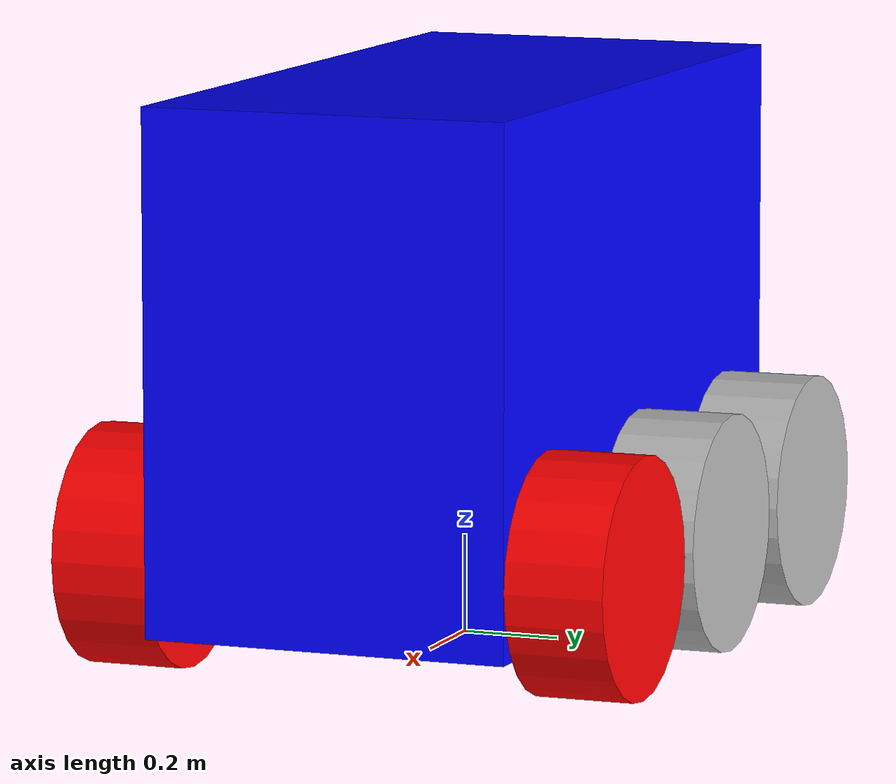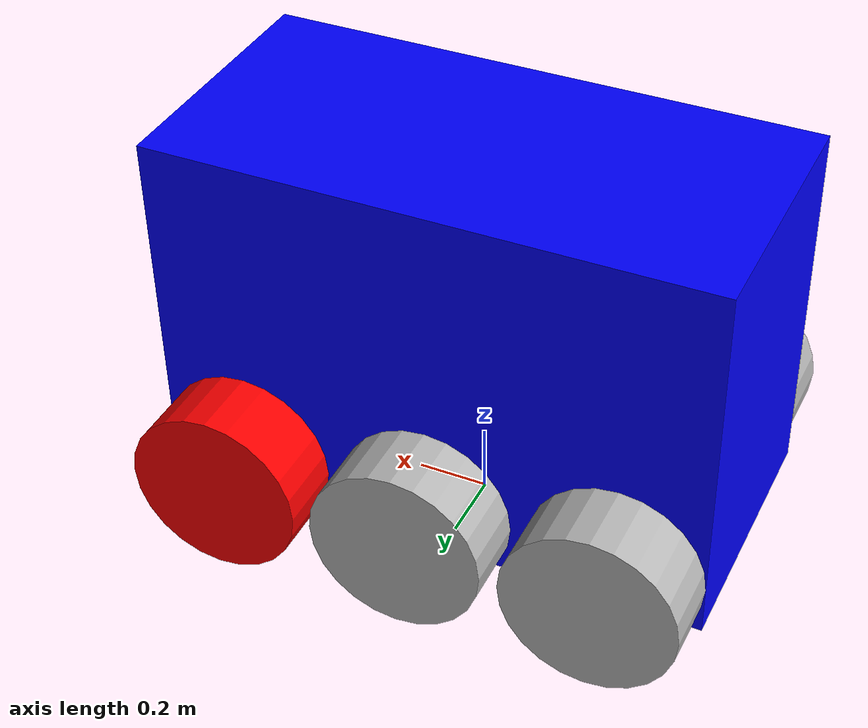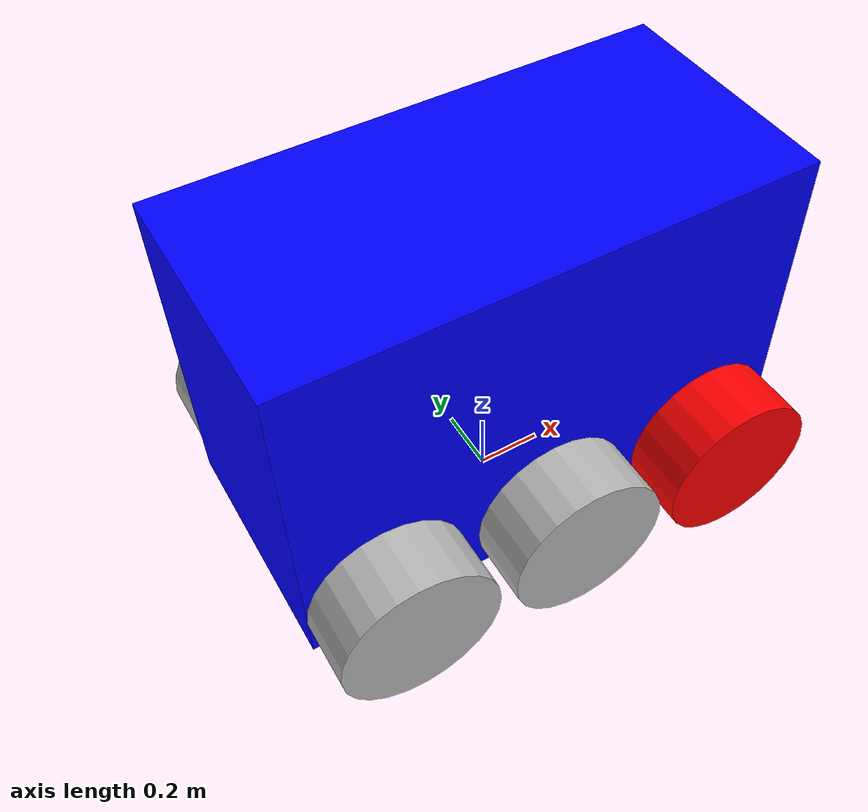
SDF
<?xml version="1.0" ?>
<sdf version="1.10">
  <model name='FLIP' canonical_link='chassis'>
    <pose>0 0 0 0 0 0</pose>

    <link name='chassis'>
      <pose relative_to='__model__'>0 0 0.625 0 0 0</pose>
      <inertial>
        <pose>0 0 0 0 0 0</pose>
        <mass>450.0</mass>
        <inertia>
          <ixx>62.438</ixx>
          <ixy>0</ixy>
          <ixz>0</ixz>
          <iyy>131.438</iyy>
          <iyz>0</iyz>
          <izz>111.188</izz>
        </inertia>
      </inertial>
      <visual name='visual'>
        <geometry><box><size>1.55 0.75 1.05</size></box></geometry>
        <material>
          <ambient>0.0 0.0 1.0 1</ambient>
          <diffuse>0.0 0.0 1.0 1</diffuse>
          <specular>0.0 0.0 1.0 1</specular>
        </material>
      </visual>
      <collision name='collision'>
        <geometry><box><size>1.55 0.75 1.05</size></box></geometry>
      </collision>
      <sensor name="imu_sensor" type="imu">
        <always_on>1</always_on>
        <update_rate>20</update_rate>
        <visualize>true</visualize>
        <topic>imu</topic>
      </sensor>
      <sensor name="gpu_lidar" type="gpu_lidar">
        <pose>0.6 0 0.3 0 0 0</pose>
        <always_on>1</always_on>
        <update_rate>10</update_rate>
        <lidar>
          <scan>
            <horizontal>
              <samples>640</samples>
              <resolution>1</resolution>
              <min_angle>-1.396263</min_angle>
              <max_angle>1.396263</max_angle>
            </horizontal>
            <vertical>
              <samples>1</samples>
              <resolution>1</resolution>
              <min_angle>0</min_angle>
              <max_angle>0</max_angle>
            </vertical>
          </scan>
          <range>
            <min>0.08</min>
            <max>10.0</max>
            <resolution>0.01</resolution>
          </range>
        </lidar>
        <visualize>true</visualize>
        <topic>lidar</topic>
      </sensor>
    </link>

    <link name='left_back_wheel'>
      <pose relative_to="chassis">-0.533 0.475 -0.383 -1.5707 0 0</pose>
      <inertial><mass>5</mass><inertia><ixx>0.694</ixx><ixy>0</ixy><ixz>0</ixz><iyy>1.460</iyy><iyz>0</iyz><izz>1.235</izz></inertia></inertial>
      <visual name='visual'><geometry><cylinder><radius>0.242</radius><length>0.2</length></cylinder></geometry></visual>
      <collision name='collision'><geometry><cylinder><radius>0.242</radius><length>0.2</length></cylinder></geometry></collision>
    </link>

    <link name='left_middle_wheel'>
      <pose relative_to="chassis">0 0.475 -0.383 -1.5707 0 0</pose>
      <inertial><mass>5</mass><inertia><ixx>0.694</ixx><ixy>0</ixy><ixz>0</ixz><iyy>1.460</iyy><iyz>0</iyz><izz>1.235</izz></inertia></inertial>
      <visual name='visual'><geometry><cylinder><radius>0.242</radius><length>0.2</length></cylinder></geometry></visual>
      <collision name='collision'><geometry><cylinder><radius>0.242</radius><length>0.2</length></cylinder></geometry></collision>
    </link>

    <link name='right_back_wheel'>
      <pose relative_to="chassis">-0.533 -0.475 -0.383 -1.5707 0 0</pose>
      <inertial><mass>5</mass><inertia><ixx>0.694</ixx><ixy>0</ixy><ixz>0</ixz><iyy>1.460</iyy><iyz>0</iyz><izz>1.235</izz></inertia></inertial>
      <visual name='visual'><geometry><cylinder><radius>0.242</radius><length>0.2</length></cylinder></geometry></visual>
      <collision name='collision'><geometry><cylinder><radius>0.242</radius><length>0.2</length></cylinder></geometry></collision>
    </link>

    <link name='right_middle_wheel'>
      <pose relative_to="chassis">0 -0.475 -0.383 -1.5707 0 0</pose>
      <inertial><mass>5</mass><inertia><ixx>0.694</ixx><ixy>0</ixy><ixz>0</ixz><iyy>1.460</iyy><iyz>0</iyz><izz>1.235</izz></inertia></inertial>
      <visual name='visual'><geometry><cylinder><radius>0.242</radius><length>0.2</length></cylinder></geometry></visual>
      <collision name='collision'><geometry><cylinder><radius>0.242</radius><length>0.2</length></cylinder></geometry></collision>
    </link>

    <link name='left_front_steer_link'>
      <pose relative_to="chassis">0.533 0.475 -0.383 0 0 0</pose>
      <inertial><mass>1.0</mass><inertia><ixx>0.01</ixx><ixy>0</ixy><ixz>0</ixz><iyy>0.01</iyy><iyz>0</iyz><izz>0.01</izz></inertia></inertial>
    </link>

    <link name='right_front_steer_link'>
      <pose relative_to="chassis">0.533 -0.475 -0.383 0 0 0</pose>
      <inertial><mass>1.0</mass><inertia><ixx>0.01</ixx><ixy>0</ixy><ixz>0</ixz><iyy>0.01</iyy><iyz>0</iyz><izz>0.01</izz></inertia></inertial>
    </link>

    <link name='left_front_wheel'>
      <pose relative_to="left_front_steer_link">0 0 0 -1.5707 0 0</pose>
      <inertial><mass>5</mass><inertia><ixx>0.694</ixx><ixy>0</ixy><ixz>0</ixz><iyy>1.460</iyy><iyz>0</iyz><izz>1.235</izz></inertia></inertial>
      <visual name='visual'>
        <geometry><cylinder><radius>0.242</radius><length>0.2</length></cylinder></geometry>
        <material><ambient>1.0 0.0 0.0 1</ambient><diffuse>1.0 0.0 0.0 1</diffuse><specular>1.0 0.0 0.0 1</specular></material>
      </visual>
      <collision name='collision'><geometry><cylinder><radius>0.242</radius><length>0.2</length></cylinder></geometry></collision>
    </link>

    <link name='right_front_wheel'>
      <pose relative_to="right_front_steer_link">0 0 0 -1.5707 0 0</pose>
      <inertial><mass>5</mass><inertia><ixx>0.694</ixx><ixy>0</ixy><ixz>0</ixz><iyy>1.460</iyy><iyz>0</iyz><izz>1.235</izz></inertia></inertial>
      <visual name='visual'>
        <geometry><cylinder><radius>0.242</radius><length>0.2</length></cylinder></geometry>
        <material><ambient>1.0 0.0 0.0 1</ambient><diffuse>1.0 0.0 0.0 1</diffuse><specular>1.0 0.0 0.0 1</specular></material>
      </visual>
      <collision name='collision'><geometry><cylinder><radius>0.242</radius><length>0.2</length></cylinder></geometry></collision>
    </link>

    <joint name='left_back_wheel_joint' type='revolute'>
      <parent>chassis</parent><child>left_back_wheel</child>
      <axis><xyz expressed_in='__model__'>0 1 0</xyz><limit><lower>-1.79769e+308</lower><upper>1.79769e+308</upper></limit></axis>
    </joint>
    <joint name='left_middle_wheel_joint' type='revolute'>
      <parent>chassis</parent><child>left_middle_wheel</child>
      <axis><xyz expressed_in='__model__'>0 1 0</xyz><limit><lower>-1.79769e+308</lower><upper>1.79769e+308</upper></limit></axis>
    </joint>
    <joint name='right_back_wheel_joint' type='revolute'>
      <parent>chassis</parent><child>right_back_wheel</child>
      <axis><xyz expressed_in='__model__'>0 1 0</xyz><limit><lower>-1.79769e+308</lower><upper>1.79769e+308</upper></limit></axis>
    </joint>
    <joint name='right_middle_wheel_joint' type='revolute'>
      <parent>chassis</parent><child>right_middle_wheel</child>
      <axis><xyz expressed_in='__model__'>0 1 0</xyz><limit><lower>-1.79769e+308</lower><upper>1.79769e+308</upper></limit></axis>
    </joint>
    <joint name='left_front_steering_joint' type='revolute'>
      <parent>chassis</parent><child>left_front_steer_link</child>
      <axis><xyz expressed_in='__model__'>0 0 1</xyz><limit><lower>-1.0</lower><upper>1.0</upper><effort>1000000</effort></limit></axis>
    </joint>
    <joint name='right_front_steering_joint' type='revolute'>
      <parent>chassis</parent><child>right_front_steer_link</child>
      <axis><xyz expressed_in='__model__'>0 0 1</xyz><limit><lower>-1.0</lower><upper>1.0</upper><effort>1000000</effort></limit></axis>
    </joint>
    <joint name='left_front_wheel_joint' type='revolute'>
      <parent>left_front_steer_link</parent><child>left_front_wheel</child>
      <axis><xyz expressed_in='__model__'>0 1 0</xyz><limit><lower>-1.79769e+308</lower><upper>1.79769e+308</upper></limit></axis>
    </joint>
    <joint name='right_front_wheel_joint' type='revolute'>
      <parent>right_front_steer_link</parent><child>right_front_wheel</child>
      <axis><xyz expressed_in='__model__'>0 1 0</xyz><limit><lower>-1.79769e+308</lower><upper>1.79769e+308</upper></limit></axis>
    </joint>

    <plugin filename="gz-sim-ackermann-steering-system" name="gz::sim::systems::AckermannSteering">
      <left_joint>left_back_wheel_joint</left_joint>
      <left_joint>left_middle_wheel_joint</left_joint>
      <left_joint>left_front_wheel_joint</left_joint>
      <right_joint>right_back_wheel_joint</right_joint>
      <right_joint>right_middle_wheel_joint</right_joint>
      <right_joint>right_front_wheel_joint</right_joint>
      <left_steering_joint>left_front_steering_joint</left_steering_joint>
      <right_steering_joint>right_front_steering_joint</right_steering_joint>
      <wheel_base>1.066</wheel_base>
      <wheel_separation>0.95</wheel_separation>
      <kingpin_width>0.95</kingpin_width>
      <wheel_radius>0.242</wheel_radius>
      <steering_limit>1.2</steering_limit>
      <topic>/model/FLIP/cmd_vel</topic>
      <odom_topic>/model/FLIP/odometry</odom_topic>
      <tf_topic>/model/FLIP/tf</tf_topic>
      <frame_id>odom</frame_id>
      <child_frame_id>base_link</child_frame_id>
      <odom_publish_frequency>10</odom_publish_frequency>

      <!-- Uncomment for smoother motion -->
    </plugin>
  </model>
</sdf>
